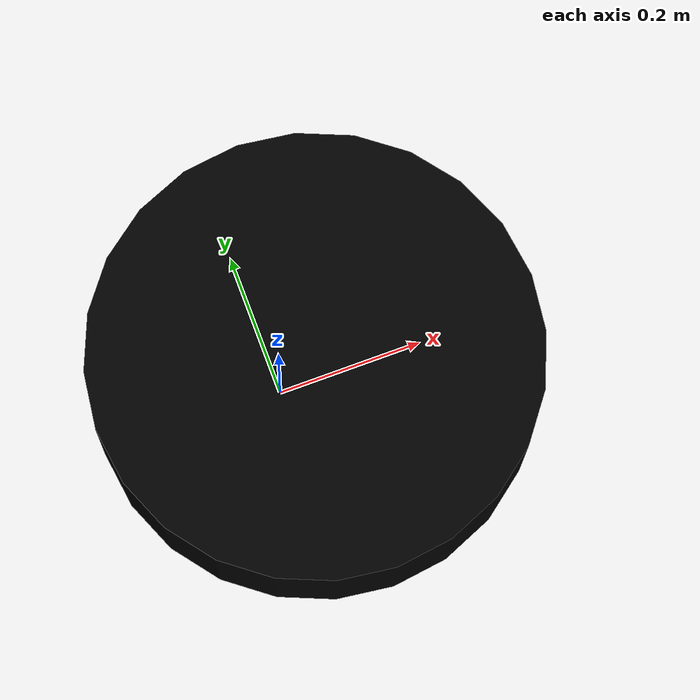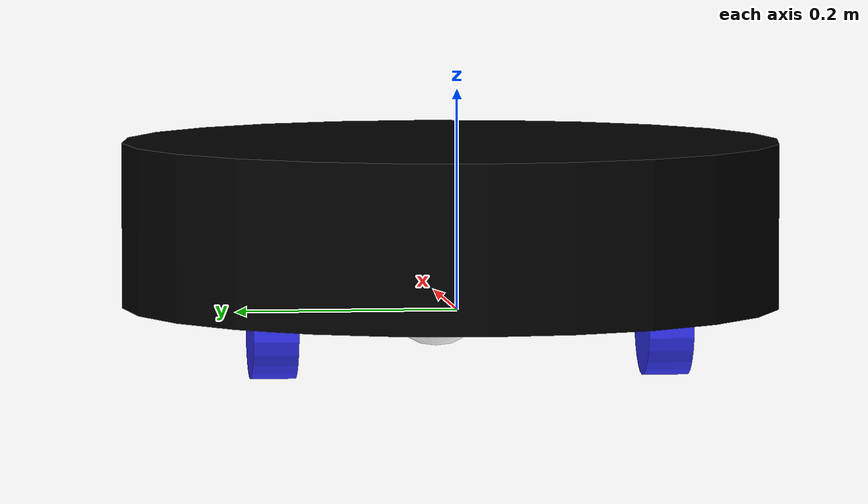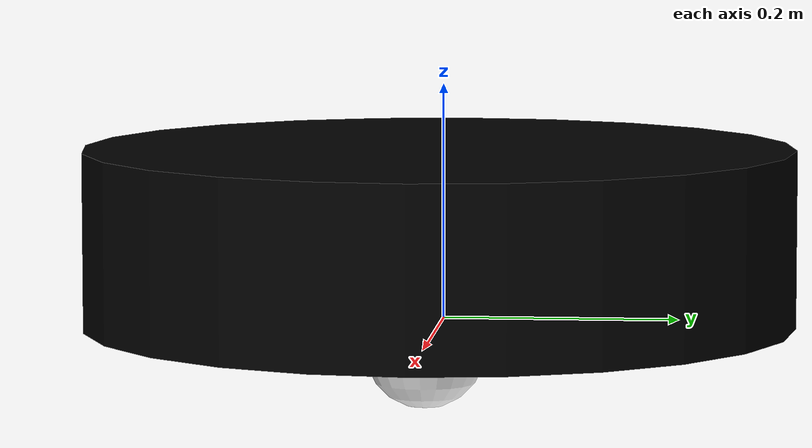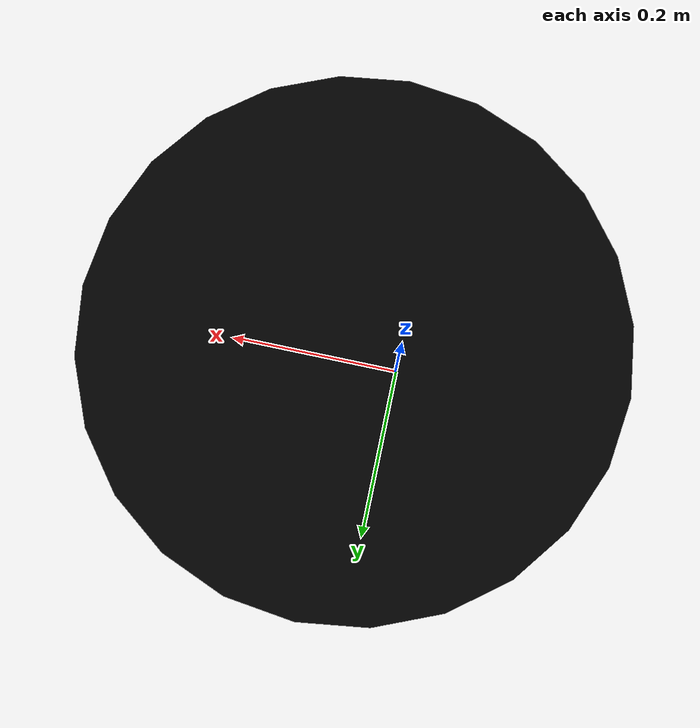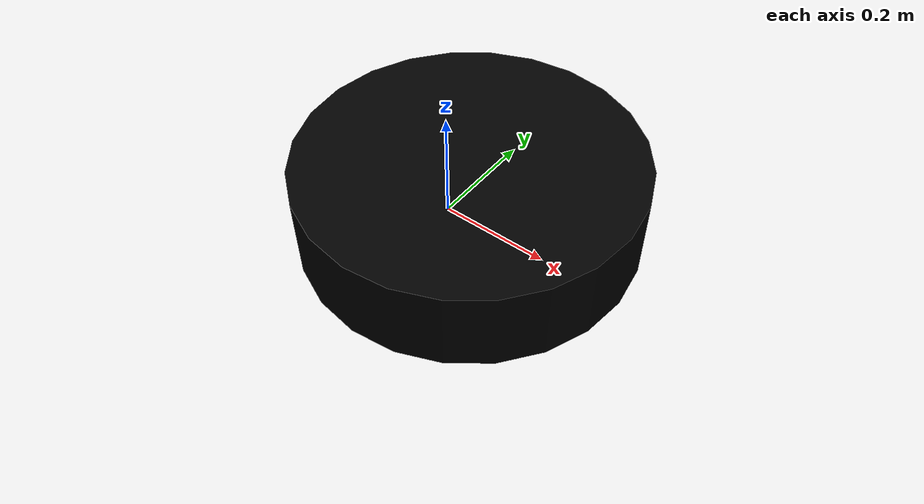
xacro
<?xml version="1.0"?>
<robot xmlns:xacro="http://www.ros.org/wiki/xacro" >

    <xacro:include filename="inertial_macros.xacro"/>

    <material name="white">
        <color rgba="1 1 1 1" />
    </material>

    <material name="orange">
        <color rgba="1 0.3 0.1 1"/>
    </material>

    <material name="blue">
        <color rgba="0.2 0.2 1 1"/>
    </material>

    <material name="black">
        <color rgba="0 0 0 1"/>
    </material>

    <!-- BASE LINK -->

    <link name="base_link">

    </link>

    <!-- BASE_FOOTPRINT LINK -->

    <joint name="base_footprint_joint" type="fixed">
       <parent link="base_link"/>
       <child link="base_footprint"/>
       <origin xyz="0 0 0" rpy="0 0 0"/>
    </joint>

    <link name="base_footprint">
    </link>

    <!-- CHASSIS LINK -->

    <joint name="chassis_joint" type="fixed">
        <parent link="base_link"/>
        <child link="chassis"/>
        <origin xyz="-0.1 0 0"/>
    </joint>

    <link name="chassis">
        <visual>
            <origin xyz="0.15 0 0.075"/>
            <geometry>
                <cylinder radius="0.3" length = "0.15" />
            </geometry>
            <material name="black"/>
        </visual>
        <collision>
            <origin xyz="0.15 0 0.075"/>
            <geometry>
                <cylinder radius="0.3" length = "0.15" />
            </geometry>
        </collision>
        <xacro:inertial_cylinder mass="0.1" length="0.04" radius="0.05">
            <origin xyz="0.15 0 0.075" rpy="0 0 0"/>
        </xacro:inertial_cylinder>
    </link>

    <gazebo reference="chassis">
        <material>Gazebo/Black</material>
    </gazebo>

    <!-- LEFT WHEEL LINK -->

    <joint name="left_wheel_joint" type="continuous">
        <parent link="base_link"/>
        <child link="left_wheel"/>
        <origin xyz="-0.1 0.175 0" rpy="-${pi/2} 0 0" />
        <axis xyz="0 0 1"/>
    </joint>

    <link name="left_wheel">
        <visual>
            <geometry>
                <cylinder radius="0.05" length="0.04"/>
            </geometry>
            <material name="blue"/>
        </visual>
        <collision>
            <geometry>
                <cylinder radius="0.05" length="0.04"/>
            </geometry>
        </collision>
        <xacro:inertial_cylinder mass="0.1" length="0.04" radius="0.05">
            <origin xyz="0 0 0" rpy="0 0 0"/>
        </xacro:inertial_cylinder>
    </link>

    <gazebo reference="left_wheel">
        <material>Gazebo/Blue</material>
    </gazebo>

    <!-- RIGHT WHEEL LINK -->

    <joint name="right_wheel_joint" type="continuous">
        <parent link="base_link"/>
        <child link="right_wheel"/>
        <origin xyz="-0.1 -0.175 0" rpy="${pi/2} 0 0" />
        <axis xyz="0 0 -1"/>
    </joint>

    <link name="right_wheel">
        <visual>
            <geometry>
                <cylinder radius="0.05" length="0.04"/>
            </geometry>
            <material name="blue"/>
        </visual>
        <collision>
            <geometry>
                <cylinder radius="0.05" length="0.04"/>
            </geometry>
        </collision>
        <xacro:inertial_cylinder mass="0.1" length="0.04" radius="0.05">
            <origin xyz="0 0 0" rpy="0 0 0"/>
        </xacro:inertial_cylinder>
    </link>

    <gazebo reference="right_wheel">
        <material>Gazebo/Blue</material>
    </gazebo>

    <!-- CASTER WHEEL LINK -->

    <joint name="caster_wheel_joint" type="fixed">
        <parent link="chassis"/>
        <child link="caster_wheel"/>
        <origin xyz="0.28 0 0"/>
    </joint>

    <link name="caster_wheel">
        <visual>
            <geometry>
                <sphere radius="0.05"/>
            </geometry>
            <material name="white"/>
        </visual>
        <collision>
            <geometry>
                <sphere radius="0.05"/>
            </geometry>
        </collision>
        <xacro:inertial_sphere mass="0.1" radius="0.05">
            <origin xyz="0 0 0" rpy="0 0 0"/>
        </xacro:inertial_sphere>
    </link>

    <gazebo reference="caster_wheel">
        <material>Gazebo/White</material>
        <mu1 value="0.001"/>
        <mu2 value="0.001"/>
    </gazebo>

</robot>
